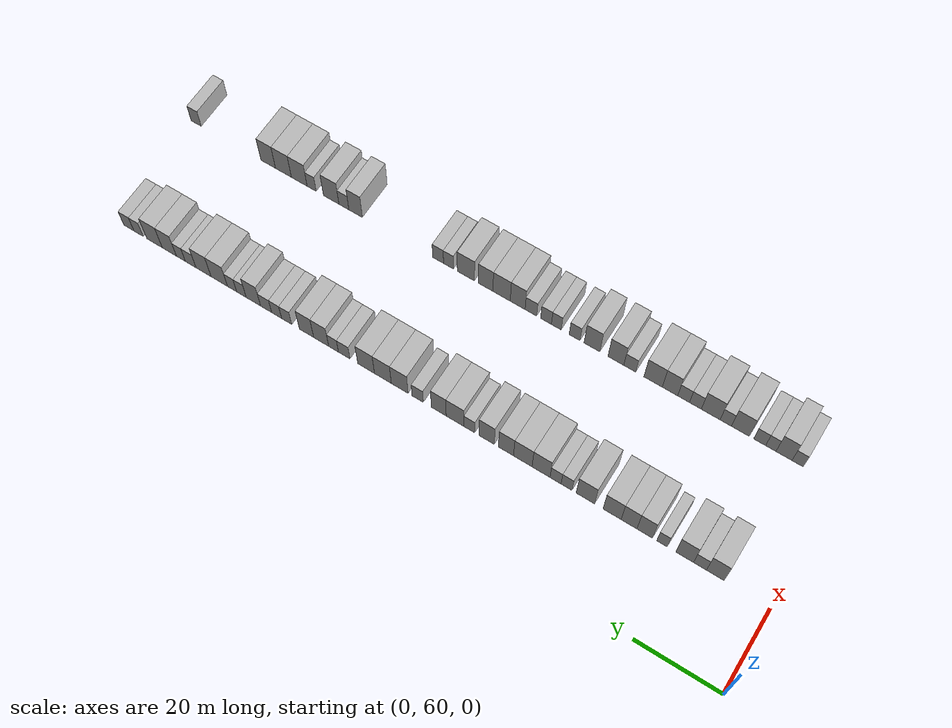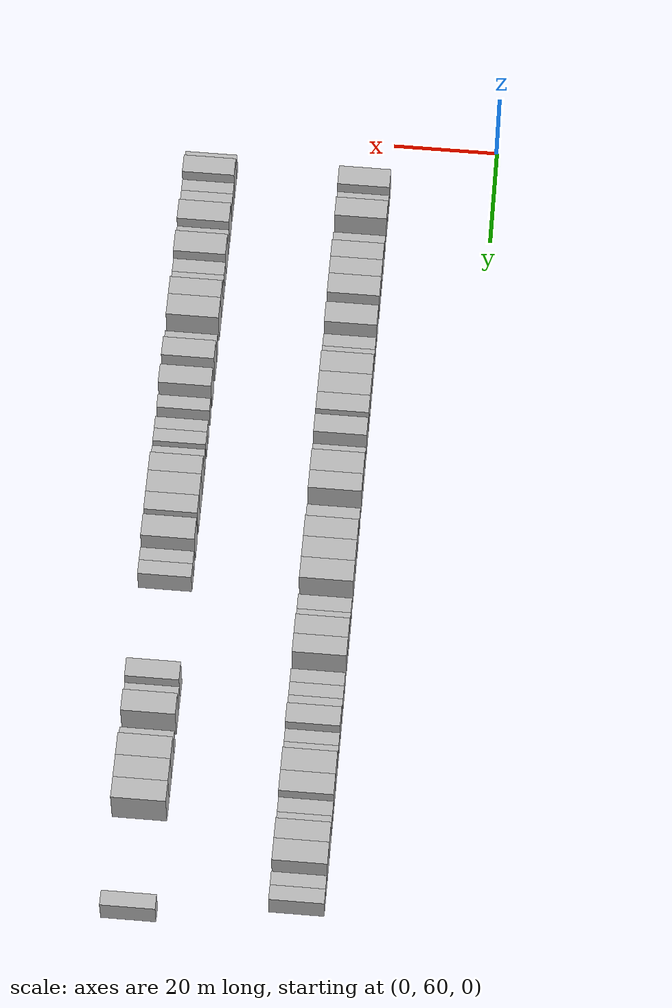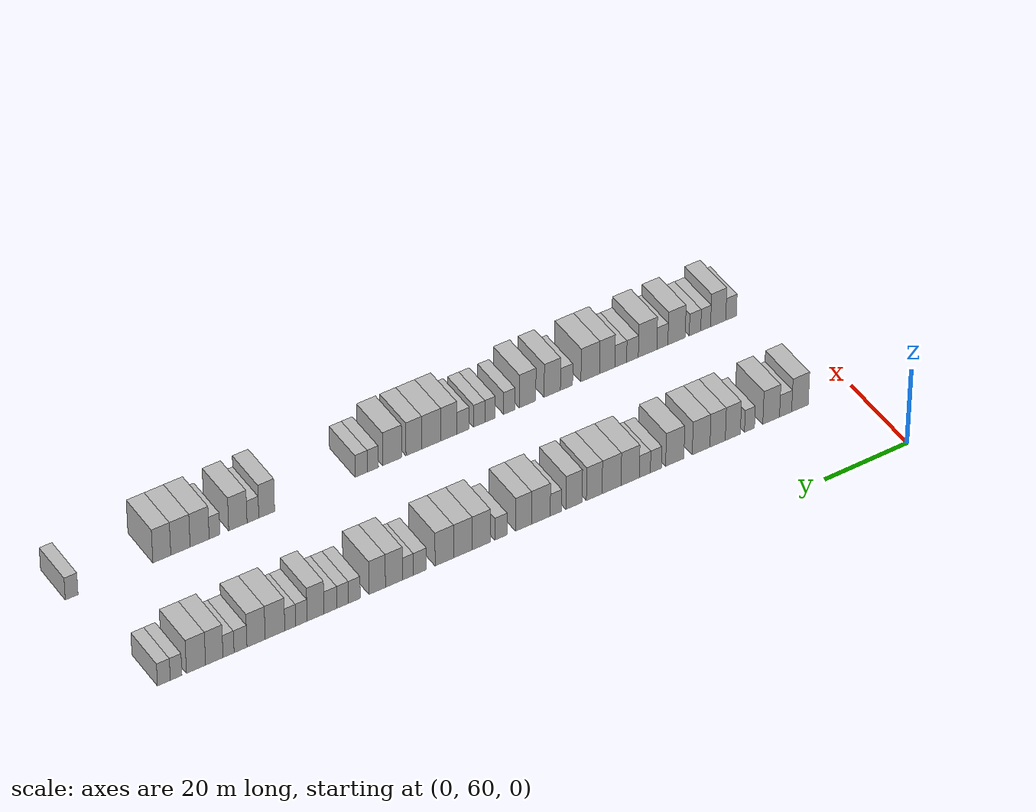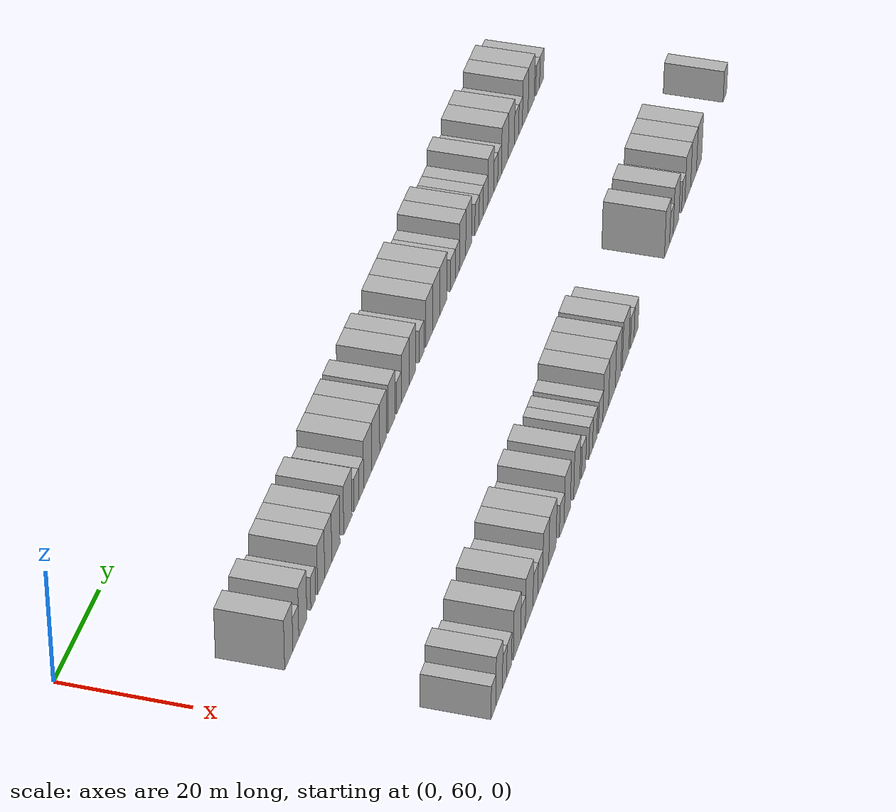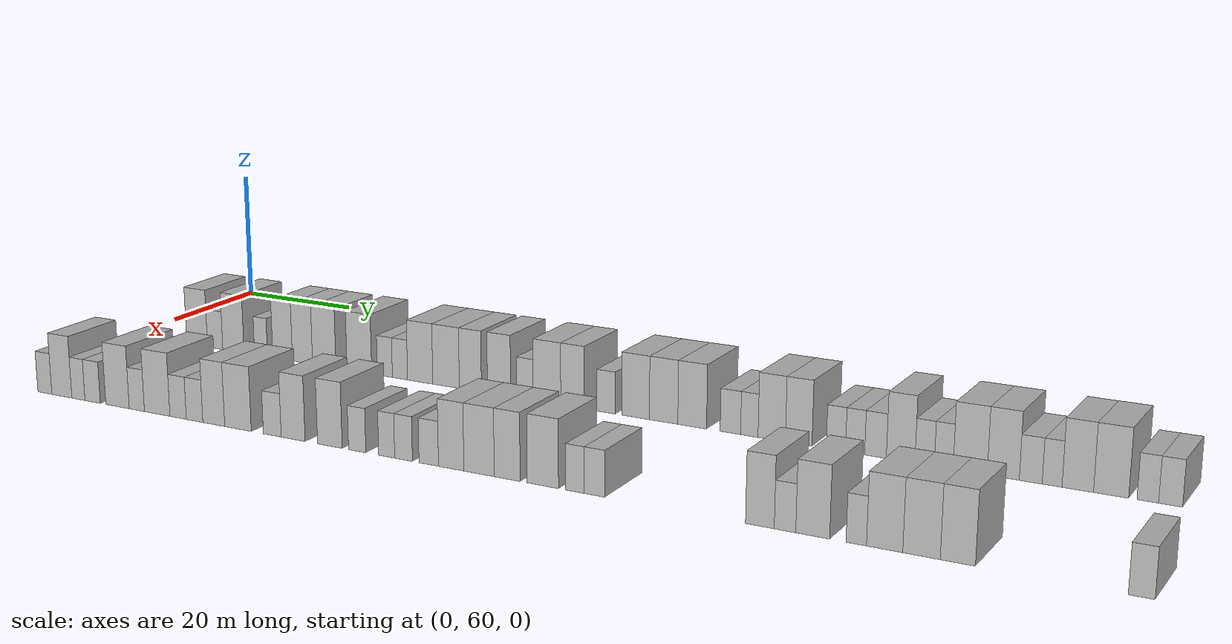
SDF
<sdf version="1.6">
 <world name="default">
  <model name="building_72">
   <static>1</static>
   <pose>25.0000 72.5894 0 0.000000 0.000000 0.000000</pose>
   <link name="link">
    <pose>0 0 4.50 0 0 0</pose>
    <collision name="collision"><geometry><box><size>10.0000 4.0328 9.0000</size></box></geometry></collision>
    <visual name="visual">
     <cast_shadows>0</cast_shadows>
     <geometry><box><size>10.0000 4.0328 9.0000</size></box></geometry>
     <material>
      <script>
       <uri>model://HANNAS_wall/materials/scripts</uri>
       <uri>model://HANNAS_wall/materials/textures</uri>
       <name>vrc/HANNAS_wall</name>
      </script>
     </material>
    </visual>
   </link>
  </model>
  <model name="building_73">
   <static>1</static>
   <pose>25.0000 76.0771 0 0.000000 0.000000 0.000000</pose>
   <link name="link">
    <pose>0 0 3.00 0 0 0</pose>
    <collision name="collision"><geometry><box><size>10.0000 2.9425 6.0000</size></box></geometry></collision>
    <visual name="visual">
     <cast_shadows>0</cast_shadows>
     <geometry><box><size>10.0000 2.9425 6.0000</size></box></geometry>
     <material>
      <script>
       <uri>model://HANNAS_wall/materials/scripts</uri>
       <uri>model://HANNAS_wall/materials/textures</uri>
       <name>vrc/HANNAS_wall</name>
      </script>
     </material>
    </visual>
   </link>
  </model>
  <model name="building_74">
   <static>1</static>
   <pose>25.0000 79.5744 0 0.000000 0.000000 0.000000</pose>
   <link name="link">
    <pose>0 0 4.50 0 0 0</pose>
    <collision name="collision"><geometry><box><size>10.0000 4.0521 9.0000</size></box></geometry></collision>
    <visual name="visual">
     <cast_shadows>0</cast_shadows>
     <geometry><box><size>10.0000 4.0521 9.0000</size></box></geometry>
     <material>
      <script>
       <uri>model://HANNAS_wall/materials/scripts</uri>
       <uri>model://HANNAS_wall/materials/textures</uri>
       <name>vrc/HANNAS_wall</name>
      </script>
     </material>
    </visual>
   </link>
  </model>
  <model name="building_75">
   <static>1</static>
   <pose>25.0000 84.8126 0 0.000000 0.000000 0.000000</pose>
   <link name="link">
    <pose>0 0 3.00 0 0 0</pose>
    <collision name="collision"><geometry><box><size>10.0000 2.4243 6.0000</size></box></geometry></collision>
    <visual name="visual">
     <cast_shadows>0</cast_shadows>
     <geometry><box><size>10.0000 2.4243 6.0000</size></box></geometry>
     <material>
      <script>
       <uri>model://HANNAS_wall/materials/scripts</uri>
       <uri>model://HANNAS_wall/materials/textures</uri>
       <name>vrc/HANNAS_wall</name>
      </script>
     </material>
    </visual>
   </link>
  </model>
  <model name="building_76">
   <static>1</static>
   <pose>25.0000 88.8394 0 0.000000 0.000000 0.000000</pose>
   <link name="link">
    <pose>0 0 4.50 0 0 0</pose>
    <collision name="collision"><geometry><box><size>10.0000 3.6293 9.0000</size></box></geometry></collision>
    <visual name="visual">
     <cast_shadows>0</cast_shadows>
     <geometry><box><size>10.0000 3.6293 9.0000</size></box></geometry>
     <material>
      <script>
       <uri>model://HANNAS_wall/materials/scripts</uri>
       <uri>model://HANNAS_wall/materials/textures</uri>
       <name>vrc/HANNAS_wall</name>
      </script>
     </material>
    </visual>
   </link>
  </model>
  <model name="building_77">
   <static>1</static>
   <pose>25.0000 92.4983 0 0.000000 0.000000 0.000000</pose>
   <link name="link">
    <pose>0 0 4.50 0 0 0</pose>
    <collision name="collision"><geometry><box><size>10.0000 3.6884 9.0000</size></box></geometry></collision>
    <visual name="visual">
     <cast_shadows>0</cast_shadows>
     <geometry><box><size>10.0000 3.6884 9.0000</size></box></geometry>
     <material>
      <script>
       <uri>model://HANNAS_wall/materials/scripts</uri>
       <uri>model://HANNAS_wall/materials/textures</uri>
       <name>vrc/HANNAS_wall</name>
      </script>
     </material>
    </visual>
   </link>
  </model>
  <model name="building_78">
   <static>1</static>
   <pose>25.0000 96.4630 0 0.000000 0.000000 0.000000</pose>
   <link name="link">
    <pose>0 0 4.50 0 0 0</pose>
    <collision name="collision"><geometry><box><size>10.0000 4.2411 9.0000</size></box></geometry></collision>
    <visual name="visual">
     <cast_shadows>0</cast_shadows>
     <geometry><box><size>10.0000 4.2411 9.0000</size></box></geometry>
     <material>
      <script>
       <uri>model://HANNAS_wall/materials/scripts</uri>
       <uri>model://HANNAS_wall/materials/textures</uri>
       <name>vrc/HANNAS_wall</name>
      </script>
     </material>
    </visual>
   </link>
  </model>
  <model name="building_79">
   <static>1</static>
   <pose>25.0000 102.7708 0 0.000000 0.000000 0.000000</pose>
   <link name="link">
    <pose>0 0 4.50 0 0 0</pose>
    <collision name="collision"><geometry><box><size>10.0000 4.3746 9.0000</size></box></geometry></collision>
    <visual name="visual">
     <cast_shadows>0</cast_shadows>
     <geometry><box><size>10.0000 4.3746 9.0000</size></box></geometry>
     <material>
      <script>
       <uri>model://HANNAS_wall/materials/scripts</uri>
       <uri>model://HANNAS_wall/materials/textures</uri>
       <name>vrc/HANNAS_wall</name>
      </script>
     </material>
    </visual>
   </link>
  </model>
  <model name="building_80">
   <static>1</static>
   <pose>25.0000 107.2701 0 0.000000 0.000000 0.000000</pose>
   <link name="link">
    <pose>0 0 3.00 0 0 0</pose>
    <collision name="collision"><geometry><box><size>10.0000 2.6240 6.0000</size></box></geometry></collision>
    <visual name="visual">
     <cast_shadows>0</cast_shadows>
     <geometry><box><size>10.0000 2.6240 6.0000</size></box></geometry>
     <material>
      <script>
       <uri>model://HANNAS_wall/materials/scripts</uri>
       <uri>model://HANNAS_wall/materials/textures</uri>
       <name>vrc/HANNAS_wall</name>
      </script>
     </material>
    </visual>
   </link>
  </model>
  <model name="building_81">
   <static>1</static>
   <pose>25.0000 109.9038 0 0.000000 0.000000 0.000000</pose>
   <link name="link">
    <pose>0 0 3.00 0 0 0</pose>
    <collision name="collision"><geometry><box><size>10.0000 2.6432 6.0000</size></box></geometry></collision>
    <visual name="visual">
     <cast_shadows>0</cast_shadows>
     <geometry><box><size>10.0000 2.6432 6.0000</size></box></geometry>
     <material>
      <script>
       <uri>model://HANNAS_wall/materials/scripts</uri>
       <uri>model://HANNAS_wall/materials/textures</uri>
       <name>vrc/HANNAS_wall</name>
      </script>
     </material>
    </visual>
   </link>
  </model>
  <model name="building_82">
   <static>1</static>
   <pose>25.0000 113.3933 0 0.000000 0.000000 0.000000</pose>
   <link name="link">
    <pose>0 0 4.50 0 0 0</pose>
    <collision name="collision"><geometry><box><size>10.0000 4.3359 9.0000</size></box></geometry></collision>
    <visual name="visual">
     <cast_shadows>0</cast_shadows>
     <geometry><box><size>10.0000 4.3359 9.0000</size></box></geometry>
     <material>
      <script>
       <uri>model://HANNAS_wall/materials/scripts</uri>
       <uri>model://HANNAS_wall/materials/textures</uri>
       <name>vrc/HANNAS_wall</name>
      </script>
     </material>
    </visual>
   </link>
  </model>
  <model name="building_83">
   <static>1</static>
   <pose>25.0000 117.8071 0 0.000000 0.000000 0.000000</pose>
   <link name="link">
    <pose>0 0 4.50 0 0 0</pose>
    <collision name="collision"><geometry><box><size>10.0000 4.4917 9.0000</size></box></geometry></collision>
    <visual name="visual">
     <cast_shadows>0</cast_shadows>
     <geometry><box><size>10.0000 4.4917 9.0000</size></box></geometry>
     <material>
      <script>
       <uri>model://HANNAS_wall/materials/scripts</uri>
       <uri>model://HANNAS_wall/materials/textures</uri>
       <name>vrc/HANNAS_wall</name>
      </script>
     </material>
    </visual>
   </link>
  </model>
  <model name="building_84">
   <static>1</static>
   <pose>25.0000 121.9009 0 0.000000 0.000000 0.000000</pose>
   <link name="link">
    <pose>0 0 4.50 0 0 0</pose>
    <collision name="collision"><geometry><box><size>10.0000 3.6960 9.0000</size></box></geometry></collision>
    <visual name="visual">
     <cast_shadows>0</cast_shadows>
     <geometry><box><size>10.0000 3.6960 9.0000</size></box></geometry>
     <material>
      <script>
       <uri>model://HANNAS_wall/materials/scripts</uri>
       <uri>model://HANNAS_wall/materials/textures</uri>
       <name>vrc/HANNAS_wall</name>
      </script>
     </material>
    </visual>
   </link>
  </model>
  <model name="building_85">
   <static>1</static>
   <pose>25.0000 126.6534 0 0.000000 0.000000 0.000000</pose>
   <link name="link">
    <pose>0 0 4.50 0 0 0</pose>
    <collision name="collision"><geometry><box><size>10.0000 3.8089 9.0000</size></box></geometry></collision>
    <visual name="visual">
     <cast_shadows>0</cast_shadows>
     <geometry><box><size>10.0000 3.8089 9.0000</size></box></geometry>
     <material>
      <script>
       <uri>model://HANNAS_wall/materials/scripts</uri>
       <uri>model://HANNAS_wall/materials/textures</uri>
       <name>vrc/HANNAS_wall</name>
      </script>
     </material>
    </visual>
   </link>
  </model>
  <model name="building_86">
   <static>1</static>
   <pose>25.0000 130.8979 0 0.000000 0.000000 0.000000</pose>
   <link name="link">
    <pose>0 0 3.00 0 0 0</pose>
    <collision name="collision"><geometry><box><size>10.0000 2.6801 6.0000</size></box></geometry></collision>
    <visual name="visual">
     <cast_shadows>0</cast_shadows>
     <geometry><box><size>10.0000 2.6801 6.0000</size></box></geometry>
     <material>
      <script>
       <uri>model://HANNAS_wall/materials/scripts</uri>
       <uri>model://HANNAS_wall/materials/textures</uri>
       <name>vrc/HANNAS_wall</name>
      </script>
     </material>
    </visual>
   </link>
  </model>
  <model name="building_87">
   <static>1</static>
   <pose>25.0000 134.4437 0 0.000000 0.000000 0.000000</pose>
   <link name="link">
    <pose>0 0 4.50 0 0 0</pose>
    <collision name="collision"><geometry><box><size>10.0000 4.4114 9.0000</size></box></geometry></collision>
    <visual name="visual">
     <cast_shadows>0</cast_shadows>
     <geometry><box><size>10.0000 4.4114 9.0000</size></box></geometry>
     <material>
      <script>
       <uri>model://HANNAS_wall/materials/scripts</uri>
       <uri>model://HANNAS_wall/materials/textures</uri>
       <name>vrc/HANNAS_wall</name>
      </script>
     </material>
    </visual>
   </link>
  </model>
  <model name="building_88">
   <static>1</static>
   <pose>25.0000 138.5040 0 0.000000 0.000000 0.000000</pose>
   <link name="link">
    <pose>0 0 4.50 0 0 0</pose>
    <collision name="collision"><geometry><box><size>10.0000 3.7091 9.0000</size></box></geometry></collision>
    <visual name="visual">
     <cast_shadows>0</cast_shadows>
     <geometry><box><size>10.0000 3.7091 9.0000</size></box></geometry>
     <material>
      <script>
       <uri>model://HANNAS_wall/materials/scripts</uri>
       <uri>model://HANNAS_wall/materials/textures</uri>
       <name>vrc/HANNAS_wall</name>
      </script>
     </material>
    </visual>
   </link>
  </model>
  <model name="building_89">
   <static>1</static>
   <pose>25.0000 143.7785 0 0.000000 0.000000 0.000000</pose>
   <link name="link">
    <pose>0 0 3.00 0 0 0</pose>
    <collision name="collision"><geometry><box><size>10.0000 2.8400 6.0000</size></box></geometry></collision>
    <visual name="visual">
     <cast_shadows>0</cast_shadows>
     <geometry><box><size>10.0000 2.8400 6.0000</size></box></geometry>
     <material>
      <script>
       <uri>model://HANNAS_wall/materials/scripts</uri>
       <uri>model://HANNAS_wall/materials/textures</uri>
       <name>vrc/HANNAS_wall</name>
      </script>
     </material>
    </visual>
   </link>
  </model>
  <model name="building_90">
   <static>1</static>
   <pose>25.0000 148.3240 0 0.000000 0.000000 0.000000</pose>
   <link name="link">
    <pose>0 0 4.50 0 0 0</pose>
    <collision name="collision"><geometry><box><size>10.0000 4.2509 9.0000</size></box></geometry></collision>
    <visual name="visual">
     <cast_shadows>0</cast_shadows>
     <geometry><box><size>10.0000 4.2509 9.0000</size></box></geometry>
     <material>
      <script>
       <uri>model://HANNAS_wall/materials/scripts</uri>
       <uri>model://HANNAS_wall/materials/textures</uri>
       <name>vrc/HANNAS_wall</name>
      </script>
     </material>
    </visual>
   </link>
  </model>
  <model name="building_91">
   <static>1</static>
   <pose>25.0000 152.6005 0 0.000000 0.000000 0.000000</pose>
   <link name="link">
    <pose>0 0 4.50 0 0 0</pose>
    <collision name="collision"><geometry><box><size>10.0000 4.3023 9.0000</size></box></geometry></collision>
    <visual name="visual">
     <cast_shadows>0</cast_shadows>
     <geometry><box><size>10.0000 4.3023 9.0000</size></box></geometry>
     <material>
      <script>
       <uri>model://HANNAS_wall/materials/scripts</uri>
       <uri>model://HANNAS_wall/materials/textures</uri>
       <name>vrc/HANNAS_wall</name>
      </script>
     </material>
    </visual>
   </link>
  </model>
  <model name="building_92">
   <static>1</static>
   <pose>25.0000 156.8946 0 0.000000 0.000000 0.000000</pose>
   <link name="link">
    <pose>0 0 4.50 0 0 0</pose>
    <collision name="collision"><geometry><box><size>10.0000 4.2859 9.0000</size></box></geometry></collision>
    <visual name="visual">
     <cast_shadows>0</cast_shadows>
     <geometry><box><size>10.0000 4.2859 9.0000</size></box></geometry>
     <material>
      <script>
       <uri>model://HANNAS_wall/materials/scripts</uri>
       <uri>model://HANNAS_wall/materials/textures</uri>
       <name>vrc/HANNAS_wall</name>
      </script>
     </material>
    </visual>
   </link>
  </model>
  <model name="building_93">
   <static>1</static>
   <pose>25.0000 162.5309 0 0.000000 0.000000 0.000000</pose>
   <link name="link">
    <pose>0 0 3.00 0 0 0</pose>
    <collision name="collision"><geometry><box><size>10.0000 2.9867 6.0000</size></box></geometry></collision>
    <visual name="visual">
     <cast_shadows>0</cast_shadows>
     <geometry><box><size>10.0000 2.9867 6.0000</size></box></geometry>
     <material>
      <script>
       <uri>model://HANNAS_wall/materials/scripts</uri>
       <uri>model://HANNAS_wall/materials/textures</uri>
       <name>vrc/HANNAS_wall</name>
      </script>
     </material>
    </visual>
   </link>
  </model>
  <model name="building_94">
   <static>1</static>
   <pose>25.0000 165.2845 0 0.000000 0.000000 0.000000</pose>
   <link name="link">
    <pose>0 0 3.00 0 0 0</pose>
    <collision name="collision"><geometry><box><size>10.0000 2.5205 6.0000</size></box></geometry></collision>
    <visual name="visual">
     <cast_shadows>0</cast_shadows>
     <geometry><box><size>10.0000 2.5205 6.0000</size></box></geometry>
     <material>
      <script>
       <uri>model://HANNAS_wall/materials/scripts</uri>
       <uri>model://HANNAS_wall/materials/textures</uri>
       <name>vrc/HANNAS_wall</name>
      </script>
     </material>
    </visual>
   </link>
  </model>
  <model name="building_95">
   <static>1</static>
   <pose>25.0000 168.4999 0 0.000000 0.000000 0.000000</pose>
   <link name="link">
    <pose>0 0 4.50 0 0 0</pose>
    <collision name="collision"><geometry><box><size>10.0000 3.9103 9.0000</size></box></geometry></collision>
    <visual name="visual">
     <cast_shadows>0</cast_shadows>
     <geometry><box><size>10.0000 3.9103 9.0000</size></box></geometry>
     <material>
      <script>
       <uri>model://HANNAS_wall/materials/scripts</uri>
       <uri>model://HANNAS_wall/materials/textures</uri>
       <name>vrc/HANNAS_wall</name>
      </script>
     </material>
    </visual>
   </link>
  </model>
  <model name="building_96">
   <static>1</static>
   <pose>25.0000 172.3359 0 0.000000 0.000000 0.000000</pose>
   <link name="link">
    <pose>0 0 4.50 0 0 0</pose>
    <collision name="collision"><geometry><box><size>10.0000 3.7617 9.0000</size></box></geometry></collision>
    <visual name="visual">
     <cast_shadows>0</cast_shadows>
     <geometry><box><size>10.0000 3.7617 9.0000</size></box></geometry>
     <material>
      <script>
       <uri>model://HANNAS_wall/materials/scripts</uri>
       <uri>model://HANNAS_wall/materials/textures</uri>
       <name>vrc/HANNAS_wall</name>
      </script>
     </material>
    </visual>
   </link>
  </model>
  <model name="building_97">
   <static>1</static>
   <pose>25.0000 177.5501 0 0.000000 0.000000 0.000000</pose>
   <link name="link">
    <pose>0 0 3.00 0 0 0</pose>
    <collision name="collision"><geometry><box><size>10.0000 2.6667 6.0000</size></box></geometry></collision>
    <visual name="visual">
     <cast_shadows>0</cast_shadows>
     <geometry><box><size>10.0000 2.6667 6.0000</size></box></geometry>
     <material>
      <script>
       <uri>model://HANNAS_wall/materials/scripts</uri>
       <uri>model://HANNAS_wall/materials/textures</uri>
       <name>vrc/HANNAS_wall</name>
      </script>
     </material>
    </visual>
   </link>
  </model>
  <model name="building_98">
   <static>1</static>
   <pose>25.0000 180.1997 0 0.000000 0.000000 0.000000</pose>
   <link name="link">
    <pose>0 0 3.00 0 0 0</pose>
    <collision name="collision"><geometry><box><size>10.0000 2.6324 6.0000</size></box></geometry></collision>
    <visual name="visual">
     <cast_shadows>0</cast_shadows>
     <geometry><box><size>10.0000 2.6324 6.0000</size></box></geometry>
     <material>
      <script>
       <uri>model://HANNAS_wall/materials/scripts</uri>
       <uri>model://HANNAS_wall/materials/textures</uri>
       <name>vrc/HANNAS_wall</name>
      </script>
     </material>
    </visual>
   </link>
  </model>
  <model name="building_99">
   <static>1</static>
   <pose>25.0000 182.9889 0 0.000000 0.000000 0.000000</pose>
   <link name="link">
    <pose>0 0 3.00 0 0 0</pose>
    <collision name="collision"><geometry><box><size>10.0000 2.9460 6.0000</size></box></geometry></collision>
    <visual name="visual">
     <cast_shadows>0</cast_shadows>
     <geometry><box><size>10.0000 2.9460 6.0000</size></box></geometry>
     <material>
      <script>
       <uri>model://HANNAS_wall/materials/scripts</uri>
       <uri>model://HANNAS_wall/materials/textures</uri>
       <name>vrc/HANNAS_wall</name>
      </script>
     </material>
    </visual>
   </link>
  </model>
  <model name="building_100">
   <static>1</static>
   <pose>25.0000 186.3815 0 0.000000 0.000000 0.000000</pose>
   <link name="link">
    <pose>0 0 4.50 0 0 0</pose>
    <collision name="collision"><geometry><box><size>10.0000 3.8392 9.0000</size></box></geometry></collision>
    <visual name="visual">
     <cast_shadows>0</cast_shadows>
     <geometry><box><size>10.0000 3.8392 9.0000</size></box></geometry>
     <material>
      <script>
       <uri>model://HANNAS_wall/materials/scripts</uri>
       <uri>model://HANNAS_wall/materials/textures</uri>
       <name>vrc/HANNAS_wall</name>
      </script>
     </material>
    </visual>
   </link>
  </model>
  <model name="building_101">
   <static>1</static>
   <pose>25.0000 189.5887 0 0.000000 0.000000 0.000000</pose>
   <link name="link">
    <pose>0 0 3.00 0 0 0</pose>
    <collision name="collision"><geometry><box><size>10.0000 2.5754 6.0000</size></box></geometry></collision>
    <visual name="visual">
     <cast_shadows>0</cast_shadows>
     <geometry><box><size>10.0000 2.5754 6.0000</size></box></geometry>
     <material>
      <script>
       <uri>model://HANNAS_wall/materials/scripts</uri>
       <uri>model://HANNAS_wall/materials/textures</uri>
       <name>vrc/HANNAS_wall</name>
      </script>
     </material>
    </visual>
   </link>
  </model>
  <model name="building_102">
   <static>1</static>
   <pose>25.0000 192.1136 0 0.000000 0.000000 0.000000</pose>
   <link name="link">
    <pose>0 0 3.00 0 0 0</pose>
    <collision name="collision"><geometry><box><size>10.0000 2.4743 6.0000</size></box></geometry></collision>
    <visual name="visual">
     <cast_shadows>0</cast_shadows>
     <geometry><box><size>10.0000 2.4743 6.0000</size></box></geometry>
     <material>
      <script>
       <uri>model://HANNAS_wall/materials/scripts</uri>
       <uri>model://HANNAS_wall/materials/textures</uri>
       <name>vrc/HANNAS_wall</name>
      </script>
     </material>
    </visual>
   </link>
  </model>
  <model name="building_103">
   <static>1</static>
   <pose>25.0000 195.5672 0 0.000000 0.000000 0.000000</pose>
   <link name="link">
    <pose>0 0 4.50 0 0 0</pose>
    <collision name="collision"><geometry><box><size>10.0000 4.4328 9.0000</size></box></geometry></collision>
    <visual name="visual">
     <cast_shadows>0</cast_shadows>
     <geometry><box><size>10.0000 4.4328 9.0000</size></box></geometry>
     <material>
      <script>
       <uri>model://HANNAS_wall/materials/scripts</uri>
       <uri>model://HANNAS_wall/materials/textures</uri>
       <name>vrc/HANNAS_wall</name>
      </script>
     </material>
    </visual>
   </link>
  </model>
  <model name="building_104">
   <static>1</static>
   <pose>25.0000 199.8366 0 0.000000 0.000000 0.000000</pose>
   <link name="link">
    <pose>0 0 4.50 0 0 0</pose>
    <collision name="collision"><geometry><box><size>10.0000 4.1060 9.0000</size></box></geometry></collision>
    <visual name="visual">
     <cast_shadows>0</cast_shadows>
     <geometry><box><size>10.0000 4.1060 9.0000</size></box></geometry>
     <material>
      <script>
       <uri>model://HANNAS_wall/materials/scripts</uri>
       <uri>model://HANNAS_wall/materials/textures</uri>
       <name>vrc/HANNAS_wall</name>
      </script>
     </material>
    </visual>
   </link>
  </model>
  <model name="building_105">
   <static>1</static>
   <pose>25.0000 203.3362 0 0.000000 0.000000 0.000000</pose>
   <link name="link">
    <pose>0 0 3.00 0 0 0</pose>
    <collision name="collision"><geometry><box><size>10.0000 2.8932 6.0000</size></box></geometry></collision>
    <visual name="visual">
     <cast_shadows>0</cast_shadows>
     <geometry><box><size>10.0000 2.8932 6.0000</size></box></geometry>
     <material>
      <script>
       <uri>model://HANNAS_wall/materials/scripts</uri>
       <uri>model://HANNAS_wall/materials/textures</uri>
       <name>vrc/HANNAS_wall</name>
      </script>
     </material>
    </visual>
   </link>
  </model>
  <model name="building_106">
   <static>1</static>
   <pose>25.0000 206.0243 0 0.000000 0.000000 0.000000</pose>
   <link name="link">
    <pose>0 0 3.00 0 0 0</pose>
    <collision name="collision"><geometry><box><size>10.0000 2.4830 6.0000</size></box></geometry></collision>
    <visual name="visual">
     <cast_shadows>0</cast_shadows>
     <geometry><box><size>10.0000 2.4830 6.0000</size></box></geometry>
     <material>
      <script>
       <uri>model://HANNAS_wall/materials/scripts</uri>
       <uri>model://HANNAS_wall/materials/textures</uri>
       <name>vrc/HANNAS_wall</name>
      </script>
     </material>
    </visual>
   </link>
  </model>
  <model name="building_107">
   <static>1</static>
   <pose>25.0000 209.2118 0 0.000000 0.000000 0.000000</pose>
   <link name="link">
    <pose>0 0 4.50 0 0 0</pose>
    <collision name="collision"><geometry><box><size>10.0000 3.8920 9.0000</size></box></geometry></collision>
    <visual name="visual">
     <cast_shadows>0</cast_shadows>
     <geometry><box><size>10.0000 3.8920 9.0000</size></box></geometry>
     <material>
      <script>
       <uri>model://HANNAS_wall/materials/scripts</uri>
       <uri>model://HANNAS_wall/materials/textures</uri>
       <name>vrc/HANNAS_wall</name>
      </script>
     </material>
    </visual>
   </link>
  </model>
  <model name="building_108">
   <static>1</static>
   <pose>25.0000 213.2986 0 0.000000 0.000000 0.000000</pose>
   <link name="link">
    <pose>0 0 4.50 0 0 0</pose>
    <collision name="collision"><geometry><box><size>10.0000 4.2817 9.0000</size></box></geometry></collision>
    <visual name="visual">
     <cast_shadows>0</cast_shadows>
     <geometry><box><size>10.0000 4.2817 9.0000</size></box></geometry>
     <material>
      <script>
       <uri>model://HANNAS_wall/materials/scripts</uri>
       <uri>model://HANNAS_wall/materials/textures</uri>
       <name>vrc/HANNAS_wall</name>
      </script>
     </material>
    </visual>
   </link>
  </model>
  <model name="building_109">
   <static>1</static>
   <pose>25.0000 217.7326 0 0.000000 0.000000 0.000000</pose>
   <link name="link">
    <pose>0 0 3.00 0 0 0</pose>
    <collision name="collision"><geometry><box><size>10.0000 2.5863 6.0000</size></box></geometry></collision>
    <visual name="visual">
     <cast_shadows>0</cast_shadows>
     <geometry><box><size>10.0000 2.5863 6.0000</size></box></geometry>
     <material>
      <script>
       <uri>model://HANNAS_wall/materials/scripts</uri>
       <uri>model://HANNAS_wall/materials/textures</uri>
       <name>vrc/HANNAS_wall</name>
      </script>
     </material>
    </visual>
   </link>
  </model>
  <model name="building_110">
   <static>1</static>
   <pose>25.0000 220.4529 0 0.000000 0.000000 0.000000</pose>
   <link name="link">
    <pose>0 0 3.00 0 0 0</pose>
    <collision name="collision"><geometry><box><size>10.0000 2.8544 6.0000</size></box></geometry></collision>
    <visual name="visual">
     <cast_shadows>0</cast_shadows>
     <geometry><box><size>10.0000 2.8544 6.0000</size></box></geometry>
     <material>
      <script>
       <uri>model://HANNAS_wall/materials/scripts</uri>
       <uri>model://HANNAS_wall/materials/textures</uri>
       <name>vrc/HANNAS_wall</name>
      </script>
     </material>
    </visual>
   </link>
  </model>
  <model name="building_182">
   <static>1</static>
   <pose>55.0000 69.4339 0 0.000000 0.000000 0.000000</pose>
   <link name="link">
    <pose>0 0 3.00 0 0 0</pose>
    <collision name="collision"><geometry><box><size>10.0000 2.6175 6.0000</size></box></geometry></collision>
    <visual name="visual">
     <cast_shadows>0</cast_shadows>
     <geometry><box><size>10.0000 2.6175 6.0000</size></box></geometry>
     <material>
      <script>
       <uri>model://HANNAS_wall/materials/scripts</uri>
       <uri>model://HANNAS_wall/materials/textures</uri>
       <name>vrc/HANNAS_wall</name>
      </script>
     </material>
    </visual>
   </link>
  </model>
  <model name="building_183">
   <static>1</static>
   <pose>55.0000 72.6027 0 0.000000 0.000000 0.000000</pose>
   <link name="link">
    <pose>0 0 4.50 0 0 0</pose>
    <collision name="collision"><geometry><box><size>10.0000 3.7203 9.0000</size></box></geometry></collision>
    <visual name="visual">
     <cast_shadows>0</cast_shadows>
     <geometry><box><size>10.0000 3.7203 9.0000</size></box></geometry>
     <material>
      <script>
       <uri>model://HANNAS_wall/materials/scripts</uri>
       <uri>model://HANNAS_wall/materials/textures</uri>
       <name>vrc/HANNAS_wall</name>
      </script>
     </material>
    </visual>
   </link>
  </model>
  <model name="building_184">
   <static>1</static>
   <pose>55.0000 75.6692 0 0.000000 0.000000 0.000000</pose>
   <link name="link">
    <pose>0 0 3.00 0 0 0</pose>
    <collision name="collision"><geometry><box><size>10.0000 2.4127 6.0000</size></box></geometry></collision>
    <visual name="visual">
     <cast_shadows>0</cast_shadows>
     <geometry><box><size>10.0000 2.4127 6.0000</size></box></geometry>
     <material>
      <script>
       <uri>model://HANNAS_wall/materials/scripts</uri>
       <uri>model://HANNAS_wall/materials/textures</uri>
       <name>vrc/HANNAS_wall</name>
      </script>
     </material>
    </visual>
   </link>
  </model>
  <model name="building_185">
   <static>1</static>
   <pose>55.0000 78.2781 0 0.000000 0.000000 0.000000</pose>
   <link name="link">
    <pose>0 0 3.00 0 0 0</pose>
    <collision name="collision"><geometry><box><size>10.0000 2.8051 6.0000</size></box></geometry></collision>
    <visual name="visual">
     <cast_shadows>0</cast_shadows>
     <geometry><box><size>10.0000 2.8051 6.0000</size></box></geometry>
     <material>
      <script>
       <uri>model://HANNAS_wall/materials/scripts</uri>
       <uri>model://HANNAS_wall/materials/textures</uri>
       <name>vrc/HANNAS_wall</name>
      </script>
     </material>
    </visual>
   </link>
  </model>
  <model name="building_186">
   <static>1</static>
   <pose>55.0000 82.7898 0 0.000000 0.000000 0.000000</pose>
   <link name="link">
    <pose>0 0 4.50 0 0 0</pose>
    <collision name="collision"><geometry><box><size>10.0000 4.2183 9.0000</size></box></geometry></collision>
    <visual name="visual">
     <cast_shadows>0</cast_shadows>
     <geometry><box><size>10.0000 4.2183 9.0000</size></box></geometry>
     <material>
      <script>
       <uri>model://HANNAS_wall/materials/scripts</uri>
       <uri>model://HANNAS_wall/materials/textures</uri>
       <name>vrc/HANNAS_wall</name>
      </script>
     </material>
    </visual>
   </link>
  </model>
  <model name="building_187">
   <static>1</static>
   <pose>55.0000 86.2481 0 0.000000 0.000000 0.000000</pose>
   <link name="link">
    <pose>0 0 3.00 0 0 0</pose>
    <collision name="collision"><geometry><box><size>10.0000 2.6983 6.0000</size></box></geometry></collision>
    <visual name="visual">
     <cast_shadows>0</cast_shadows>
     <geometry><box><size>10.0000 2.6983 6.0000</size></box></geometry>
     <material>
      <script>
       <uri>model://HANNAS_wall/materials/scripts</uri>
       <uri>model://HANNAS_wall/materials/textures</uri>
       <name>vrc/HANNAS_wall</name>
      </script>
     </material>
    </visual>
   </link>
  </model>
  <model name="building_188">
   <static>1</static>
   <pose>55.0000 89.8392 0 0.000000 0.000000 0.000000</pose>
   <link name="link">
    <pose>0 0 4.50 0 0 0</pose>
    <collision name="collision"><geometry><box><size>10.0000 4.4839 9.0000</size></box></geometry></collision>
    <visual name="visual">
     <cast_shadows>0</cast_shadows>
     <geometry><box><size>10.0000 4.4839 9.0000</size></box></geometry>
     <material>
      <script>
       <uri>model://HANNAS_wall/materials/scripts</uri>
       <uri>model://HANNAS_wall/materials/textures</uri>
       <name>vrc/HANNAS_wall</name>
      </script>
     </material>
    </visual>
   </link>
  </model>
  <model name="building_189">
   <static>1</static>
   <pose>55.0000 93.5019 0 0.000000 0.000000 0.000000</pose>
   <link name="link">
    <pose>0 0 3.00 0 0 0</pose>
    <collision name="collision"><geometry><box><size>10.0000 2.8415 6.0000</size></box></geometry></collision>
    <visual name="visual">
     <cast_shadows>0</cast_shadows>
     <geometry><box><size>10.0000 2.8415 6.0000</size></box></geometry>
     <material>
      <script>
       <uri>model://HANNAS_wall/materials/scripts</uri>
       <uri>model://HANNAS_wall/materials/textures</uri>
       <name>vrc/HANNAS_wall</name>
      </script>
     </material>
    </visual>
   </link>
  </model>
  <model name="building_190">
   <static>1</static>
   <pose>55.0000 96.3443 0 0.000000 0.000000 0.000000</pose>
   <link name="link">
    <pose>0 0 3.00 0 0 0</pose>
    <collision name="collision"><geometry><box><size>10.0000 2.8432 6.0000</size></box></geometry></collision>
    <visual name="visual">
     <cast_shadows>0</cast_shadows>
     <geometry><box><size>10.0000 2.8432 6.0000</size></box></geometry>
     <material>
      <script>
       <uri>model://HANNAS_wall/materials/scripts</uri>
       <uri>model://HANNAS_wall/materials/textures</uri>
       <name>vrc/HANNAS_wall</name>
      </script>
     </material>
    </visual>
   </link>
  </model>
  <model name="building_191">
   <static>1</static>
   <pose>55.0000 99.6256 0 0.000000 0.000000 0.000000</pose>
   <link name="link">
    <pose>0 0 4.50 0 0 0</pose>
    <collision name="collision"><geometry><box><size>10.0000 3.7195 9.0000</size></box></geometry></collision>
    <visual name="visual">
     <cast_shadows>0</cast_shadows>
     <geometry><box><size>10.0000 3.7195 9.0000</size></box></geometry>
     <material>
      <script>
       <uri>model://HANNAS_wall/materials/scripts</uri>
       <uri>model://HANNAS_wall/materials/textures</uri>
       <name>vrc/HANNAS_wall</name>
      </script>
     </material>
    </visual>
   </link>
  </model>
  <model name="building_192">
   <static>1</static>
   <pose>55.0000 103.7158 0 0.000000 0.000000 0.000000</pose>
   <link name="link">
    <pose>0 0 4.50 0 0 0</pose>
    <collision name="collision"><geometry><box><size>10.0000 4.4608 9.0000</size></box></geometry></collision>
    <visual name="visual">
     <cast_shadows>0</cast_shadows>
     <geometry><box><size>10.0000 4.4608 9.0000</size></box></geometry>
     <material>
      <script>
       <uri>model://HANNAS_wall/materials/scripts</uri>
       <uri>model://HANNAS_wall/materials/textures</uri>
       <name>vrc/HANNAS_wall</name>
      </script>
     </material>
    </visual>
   </link>
  </model>
  <model name="building_193">
   <static>1</static>
   <pose>55.0000 109.4129 0 0.000000 0.000000 0.000000</pose>
   <link name="link">
    <pose>0 0 3.00 0 0 0</pose>
    <collision name="collision"><geometry><box><size>10.0000 2.9335 6.0000</size></box></geometry></collision>
    <visual name="visual">
     <cast_shadows>0</cast_shadows>
     <geometry><box><size>10.0000 2.9335 6.0000</size></box></geometry>
     <material>
      <script>
       <uri>model://HANNAS_wall/materials/scripts</uri>
       <uri>model://HANNAS_wall/materials/textures</uri>
       <name>vrc/HANNAS_wall</name>
      </script>
     </material>
    </visual>
   </link>
  </model>
  <model name="building_194">
   <static>1</static>
   <pose>55.0000 112.8255 0 0.000000 0.000000 0.000000</pose>
   <link name="link">
    <pose>0 0 4.50 0 0 0</pose>
    <collision name="collision"><geometry><box><size>10.0000 3.8917 9.0000</size></box></geometry></collision>
    <visual name="visual">
     <cast_shadows>0</cast_shadows>
     <geometry><box><size>10.0000 3.8917 9.0000</size></box></geometry>
     <material>
      <script>
       <uri>model://HANNAS_wall/materials/scripts</uri>
       <uri>model://HANNAS_wall/materials/textures</uri>
       <name>vrc/HANNAS_wall</name>
      </script>
     </material>
    </visual>
   </link>
  </model>
  <model name="building_195">
   <static>1</static>
   <pose>55.0000 118.7344 0 0.000000 0.000000 0.000000</pose>
   <link name="link">
    <pose>0 0 4.50 0 0 0</pose>
    <collision name="collision"><geometry><box><size>10.0000 3.9260 9.0000</size></box></geometry></collision>
    <visual name="visual">
     <cast_shadows>0</cast_shadows>
     <geometry><box><size>10.0000 3.9260 9.0000</size></box></geometry>
     <material>
      <script>
       <uri>model://HANNAS_wall/materials/scripts</uri>
       <uri>model://HANNAS_wall/materials/textures</uri>
       <name>vrc/HANNAS_wall</name>
      </script>
     </material>
    </visual>
   </link>
  </model>
  <model name="building_196">
   <static>1</static>
   <pose>55.0000 123.0538 0 0.000000 0.000000 0.000000</pose>
   <link name="link">
    <pose>0 0 3.00 0 0 0</pose>
    <collision name="collision"><geometry><box><size>10.0000 2.7127 6.0000</size></box></geometry></collision>
    <visual name="visual">
     <cast_shadows>0</cast_shadows>
     <geometry><box><size>10.0000 2.7127 6.0000</size></box></geometry>
     <material>
      <script>
       <uri>model://HANNAS_wall/materials/scripts</uri>
       <uri>model://HANNAS_wall/materials/textures</uri>
       <name>vrc/HANNAS_wall</name>
      </script>
     </material>
    </visual>
   </link>
  </model>
  <model name="building_197">
   <static>1</static>
   <pose>55.0000 127.6436 0 0.000000 0.000000 0.000000</pose>
   <link name="link">
    <pose>0 0 3.00 0 0 0</pose>
    <collision name="collision"><geometry><box><size>10.0000 2.4670 6.0000</size></box></geometry></collision>
    <visual name="visual">
     <cast_shadows>0</cast_shadows>
     <geometry><box><size>10.0000 2.4670 6.0000</size></box></geometry>
     <material>
      <script>
       <uri>model://HANNAS_wall/materials/scripts</uri>
       <uri>model://HANNAS_wall/materials/textures</uri>
       <name>vrc/HANNAS_wall</name>
      </script>
     </material>
    </visual>
   </link>
  </model>
  <model name="building_198">
   <static>1</static>
   <pose>55.0000 130.2310 0 0.000000 0.000000 0.000000</pose>
   <link name="link">
    <pose>0 0 3.00 0 0 0</pose>
    <collision name="collision"><geometry><box><size>10.0000 2.7078 6.0000</size></box></geometry></collision>
    <visual name="visual">
     <cast_shadows>0</cast_shadows>
     <geometry><box><size>10.0000 2.7078 6.0000</size></box></geometry>
     <material>
      <script>
       <uri>model://HANNAS_wall/materials/scripts</uri>
       <uri>model://HANNAS_wall/materials/textures</uri>
       <name>vrc/HANNAS_wall</name>
      </script>
     </material>
    </visual>
   </link>
  </model>
  <model name="building_199">
   <static>1</static>
   <pose>55.0000 134.0537 0 0.000000 0.000000 0.000000</pose>
   <link name="link">
    <pose>0 0 3.00 0 0 0</pose>
    <collision name="collision"><geometry><box><size>10.0000 2.9375 6.0000</size></box></geometry></collision>
    <visual name="visual">
     <cast_shadows>0</cast_shadows>
     <geometry><box><size>10.0000 2.9375 6.0000</size></box></geometry>
     <material>
      <script>
       <uri>model://HANNAS_wall/materials/scripts</uri>
       <uri>model://HANNAS_wall/materials/textures</uri>
       <name>vrc/HANNAS_wall</name>
      </script>
     </material>
    </visual>
   </link>
  </model>
  <model name="building_200">
   <static>1</static>
   <pose>55.0000 137.4140 0 0.000000 0.000000 0.000000</pose>
   <link name="link">
    <pose>0 0 4.50 0 0 0</pose>
    <collision name="collision"><geometry><box><size>10.0000 3.7832 9.0000</size></box></geometry></collision>
    <visual name="visual">
     <cast_shadows>0</cast_shadows>
     <geometry><box><size>10.0000 3.7832 9.0000</size></box></geometry>
     <material>
      <script>
       <uri>model://HANNAS_wall/materials/scripts</uri>
       <uri>model://HANNAS_wall/materials/textures</uri>
       <name>vrc/HANNAS_wall</name>
      </script>
     </material>
    </visual>
   </link>
  </model>
  <model name="building_201">
   <static>1</static>
   <pose>55.0000 141.5356 0 0.000000 0.000000 0.000000</pose>
   <link name="link">
    <pose>0 0 4.50 0 0 0</pose>
    <collision name="collision"><geometry><box><size>10.0000 4.4599 9.0000</size></box></geometry></collision>
    <visual name="visual">
     <cast_shadows>0</cast_shadows>
     <geometry><box><size>10.0000 4.4599 9.0000</size></box></geometry>
     <material>
      <script>
       <uri>model://HANNAS_wall/materials/scripts</uri>
       <uri>model://HANNAS_wall/materials/textures</uri>
       <name>vrc/HANNAS_wall</name>
      </script>
     </material>
    </visual>
   </link>
  </model>
  <model name="building_202">
   <static>1</static>
   <pose>55.0000 145.6330 0 0.000000 0.000000 0.000000</pose>
   <link name="link">
    <pose>0 0 4.50 0 0 0</pose>
    <collision name="collision"><geometry><box><size>10.0000 3.7350 9.0000</size></box></geometry></collision>
    <visual name="visual">
     <cast_shadows>0</cast_shadows>
     <geometry><box><size>10.0000 3.7350 9.0000</size></box></geometry>
     <material>
      <script>
       <uri>model://HANNAS_wall/materials/scripts</uri>
       <uri>model://HANNAS_wall/materials/textures</uri>
       <name>vrc/HANNAS_wall</name>
      </script>
     </material>
    </visual>
   </link>
  </model>
  <model name="building_203">
   <static>1</static>
   <pose>55.0000 150.7257 0 0.000000 0.000000 0.000000</pose>
   <link name="link">
    <pose>0 0 4.50 0 0 0</pose>
    <collision name="collision"><geometry><box><size>10.0000 4.4503 9.0000</size></box></geometry></collision>
    <visual name="visual">
     <cast_shadows>0</cast_shadows>
     <geometry><box><size>10.0000 4.4503 9.0000</size></box></geometry>
     <material>
      <script>
       <uri>model://HANNAS_wall/materials/scripts</uri>
       <uri>model://HANNAS_wall/materials/textures</uri>
       <name>vrc/HANNAS_wall</name>
      </script>
     </material>
    </visual>
   </link>
  </model>
  <model name="building_204">
   <static>1</static>
   <pose>55.0000 155.2436 0 0.000000 0.000000 0.000000</pose>
   <link name="link">
    <pose>0 0 3.00 0 0 0</pose>
    <collision name="collision"><geometry><box><size>10.0000 2.5855 6.0000</size></box></geometry></collision>
    <visual name="visual">
     <cast_shadows>0</cast_shadows>
     <geometry><box><size>10.0000 2.5855 6.0000</size></box></geometry>
     <material>
      <script>
       <uri>model://HANNAS_wall/materials/scripts</uri>
       <uri>model://HANNAS_wall/materials/textures</uri>
       <name>vrc/HANNAS_wall</name>
      </script>
     </material>
    </visual>
   </link>
  </model>
  <model name="building_205">
   <static>1</static>
   <pose>55.0000 157.9595 0 0.000000 0.000000 0.000000</pose>
   <link name="link">
    <pose>0 0 3.00 0 0 0</pose>
    <collision name="collision"><geometry><box><size>10.0000 2.8462 6.0000</size></box></geometry></collision>
    <visual name="visual">
     <cast_shadows>0</cast_shadows>
     <geometry><box><size>10.0000 2.8462 6.0000</size></box></geometry>
     <material>
      <script>
       <uri>model://HANNAS_wall/materials/scripts</uri>
       <uri>model://HANNAS_wall/materials/textures</uri>
       <name>vrc/HANNAS_wall</name>
      </script>
     </material>
    </visual>
   </link>
  </model>
  <model name="building_206">
   <static>1</static>
   <pose>55.0000 179.8566 0 0.000000 0.000000 0.000000</pose>
   <link name="link">
    <pose>0 0 4.50 0 0 0</pose>
    <collision name="collision"><geometry><box><size>10.0000 3.6493 9.0000</size></box></geometry></collision>
    <visual name="visual">
     <cast_shadows>0</cast_shadows>
     <geometry><box><size>10.0000 3.6493 9.0000</size></box></geometry>
     <material>
      <script>
       <uri>model://HANNAS_wall/materials/scripts</uri>
       <uri>model://HANNAS_wall/materials/textures</uri>
       <name>vrc/HANNAS_wall</name>
      </script>
     </material>
    </visual>
   </link>
  </model>
  <model name="building_207">
   <static>1</static>
   <pose>55.0000 183.0278 0 0.000000 0.000000 0.000000</pose>
   <link name="link">
    <pose>0 0 3.00 0 0 0</pose>
    <collision name="collision"><geometry><box><size>10.0000 2.6932 6.0000</size></box></geometry></collision>
    <visual name="visual">
     <cast_shadows>0</cast_shadows>
     <geometry><box><size>10.0000 2.6932 6.0000</size></box></geometry>
     <material>
      <script>
       <uri>model://HANNAS_wall/materials/scripts</uri>
       <uri>model://HANNAS_wall/materials/textures</uri>
       <name>vrc/HANNAS_wall</name>
      </script>
     </material>
    </visual>
   </link>
  </model>
  <model name="building_208">
   <static>1</static>
   <pose>55.0000 186.4727 0 0.000000 0.000000 0.000000</pose>
   <link name="link">
    <pose>0 0 4.50 0 0 0</pose>
    <collision name="collision"><geometry><box><size>10.0000 4.1965 9.0000</size></box></geometry></collision>
    <visual name="visual">
     <cast_shadows>0</cast_shadows>
     <geometry><box><size>10.0000 4.1965 9.0000</size></box></geometry>
     <material>
      <script>
       <uri>model://HANNAS_wall/materials/scripts</uri>
       <uri>model://HANNAS_wall/materials/textures</uri>
       <name>vrc/HANNAS_wall</name>
      </script>
     </material>
    </visual>
   </link>
  </model>
  <model name="building_209">
   <static>1</static>
   <pose>55.0000 191.8053 0 0.000000 0.000000 0.000000</pose>
   <link name="link">
    <pose>0 0 3.00 0 0 0</pose>
    <collision name="collision"><geometry><box><size>10.0000 2.4686 6.0000</size></box></geometry></collision>
    <visual name="visual">
     <cast_shadows>0</cast_shadows>
     <geometry><box><size>10.0000 2.4686 6.0000</size></box></geometry>
     <material>
      <script>
       <uri>model://HANNAS_wall/materials/scripts</uri>
       <uri>model://HANNAS_wall/materials/textures</uri>
       <name>vrc/HANNAS_wall</name>
      </script>
     </material>
    </visual>
   </link>
  </model>
  <model name="building_210">
   <static>1</static>
   <pose>55.0000 195.2073 0 0.000000 0.000000 0.000000</pose>
   <link name="link">
    <pose>0 0 4.50 0 0 0</pose>
    <collision name="collision"><geometry><box><size>10.0000 4.3354 9.0000</size></box></geometry></collision>
    <visual name="visual">
     <cast_shadows>0</cast_shadows>
     <geometry><box><size>10.0000 4.3354 9.0000</size></box></geometry>
     <material>
      <script>
       <uri>model://HANNAS_wall/materials/scripts</uri>
       <uri>model://HANNAS_wall/materials/textures</uri>
       <name>vrc/HANNAS_wall</name>
      </script>
     </material>
    </visual>
   </link>
  </model>
  <model name="building_211">
   <static>1</static>
   <pose>55.0000 199.5708 0 0.000000 0.000000 0.000000</pose>
   <link name="link">
    <pose>0 0 4.50 0 0 0</pose>
    <collision name="collision"><geometry><box><size>10.0000 4.3916 9.0000</size></box></geometry></collision>
    <visual name="visual">
     <cast_shadows>0</cast_shadows>
     <geometry><box><size>10.0000 4.3916 9.0000</size></box></geometry>
     <material>
      <script>
       <uri>model://HANNAS_wall/materials/scripts</uri>
       <uri>model://HANNAS_wall/materials/textures</uri>
       <name>vrc/HANNAS_wall</name>
      </script>
     </material>
    </visual>
   </link>
  </model>
  <model name="building_212">
   <static>1</static>
   <pose>55.0000 203.7990 0 0.000000 0.000000 0.000000</pose>
   <link name="link">
    <pose>0 0 4.50 0 0 0</pose>
    <collision name="collision"><geometry><box><size>10.0000 4.0647 9.0000</size></box></geometry></collision>
    <visual name="visual">
     <cast_shadows>0</cast_shadows>
     <geometry><box><size>10.0000 4.0647 9.0000</size></box></geometry>
     <material>
      <script>
       <uri>model://HANNAS_wall/materials/scripts</uri>
       <uri>model://HANNAS_wall/materials/textures</uri>
       <name>vrc/HANNAS_wall</name>
      </script>
     </material>
    </visual>
   </link>
  </model>
  <model name="building_213">
   <static>1</static>
   <pose>55.0000 224.1144 0 0.000000 0.000000 0.000000</pose>
   <link name="link">
    <pose>0 0 3.00 0 0 0</pose>
    <collision name="collision"><geometry><box><size>10.0000 2.8554 6.0000</size></box></geometry></collision>
    <visual name="visual">
     <cast_shadows>0</cast_shadows>
     <geometry><box><size>10.0000 2.8554 6.0000</size></box></geometry>
     <material>
      <script>
       <uri>model://HANNAS_wall/materials/scripts</uri>
       <uri>model://HANNAS_wall/materials/textures</uri>
       <name>vrc/HANNAS_wall</name>
      </script>
     </material>
    </visual>
   </link>
  </model>
 </world>
</sdf>
